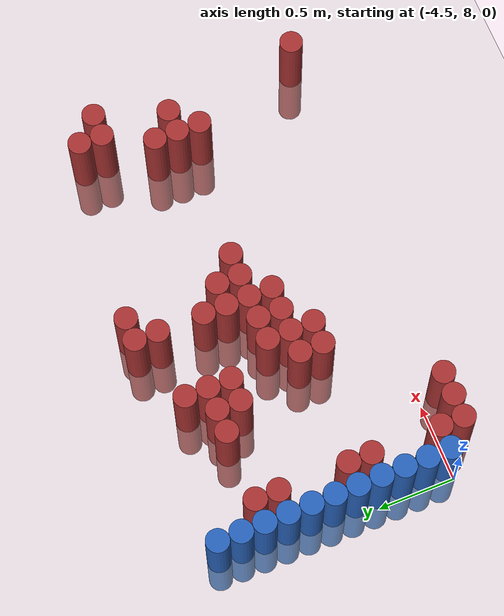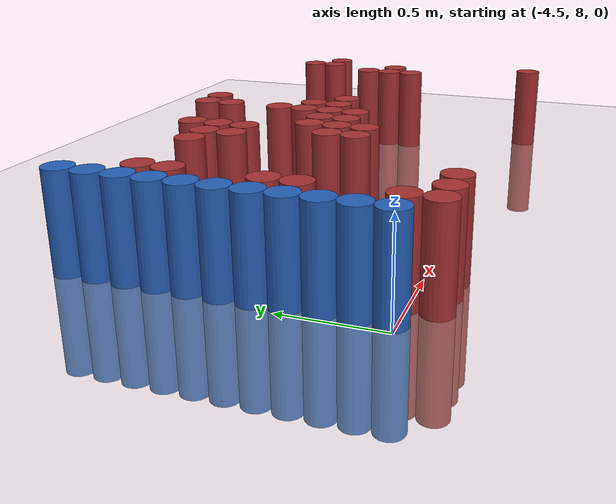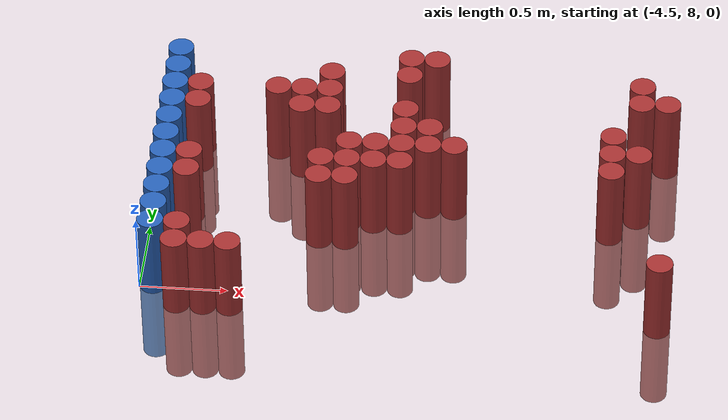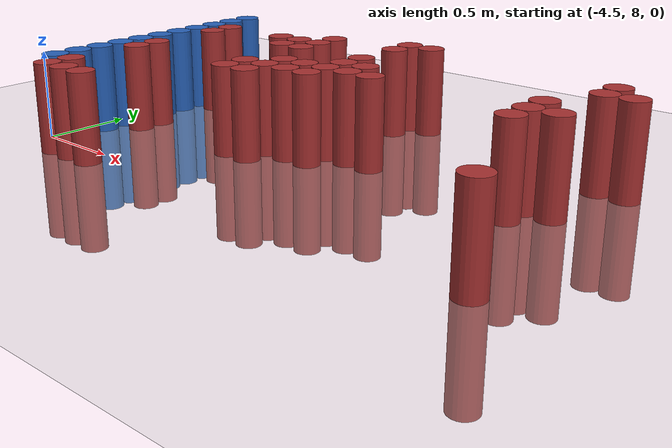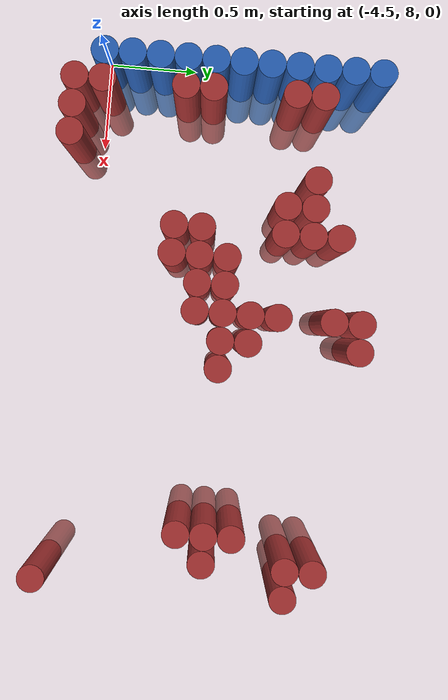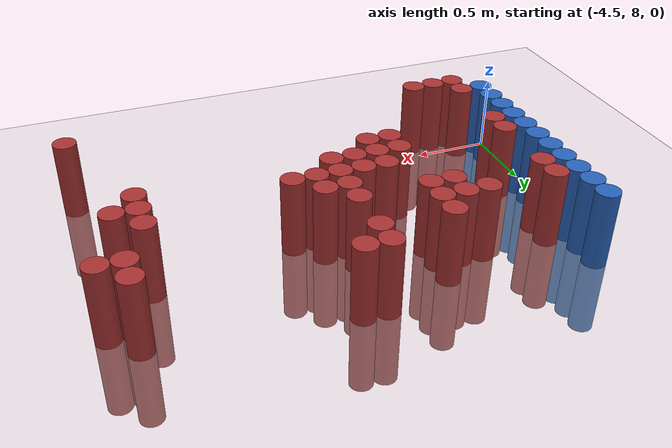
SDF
<sdf version="1.6">
 <world name="default">
  <model name="ground_plane">
   <static>1</static>
   <link name="link">
    <collision name="collision">
     <geometry><plane><normal>0 0 1</normal><size>100 100</size></plane></geometry>
     <surface><friction><ode><mu>100</mu><mu2>50</mu2></ode></friction></surface>
    </collision>
    <visual name="visual">
     <cast_shadows>0</cast_shadows>
     <geometry><plane><normal>0 0 1</normal><size>100 100</size></plane></geometry>
     <material>
      <script><uri>file://media/materials/scripts/gazebo.material</uri><name>Gazebo/Grey</name></script>
     </material>
    </visual>
   </link>
  </model>
  <model name="unit_cylinder_115">
   <static>1</static>
   <pose>-4.425000 8.025000 0.000000 0.000000 0.000000 0.000000</pose>
   <link name="link">
    <inertial>
     <mass>1</mass>
     <inertia><ixx>0.145833</ixx><ixy>0</ixy><ixz>0</ixz><iyy>0.145833</iyy><iyz>0</iyz><izz>0.125</izz></inertia>
    </inertial>
    <collision name="collision">
     <geometry><cylinder><radius>0.075000</radius><length>1</length></cylinder></geometry>
    </collision>
    <visual name="visual">
     <geometry><cylinder><radius>0.075000</radius><length>1</length></cylinder></geometry>
     <material>
      <ambient>0.152000 0.379000 0.720000 1</ambient>
      <diffuse>0.152000 0.379000 0.720000 1</diffuse>
     </material>
     <material>
      <script><name>Gazebo/Grey</name><uri>file://media/materials/scripts/gazebo.material</uri></script>
     </material>
    </visual>
   </link>
  </model>
  <model name="unit_cylinder_116">
   <static>1</static>
   <pose>-4.425000 8.175000 0.000000 0.000000 0.000000 0.000000</pose>
   <link name="link">
    <inertial>
     <mass>1</mass>
     <inertia><ixx>0.145833</ixx><ixy>0</ixy><ixz>0</ixz><iyy>0.145833</iyy><iyz>0</iyz><izz>0.125</izz></inertia>
    </inertial>
    <collision name="collision">
     <geometry><cylinder><radius>0.075000</radius><length>1</length></cylinder></geometry>
    </collision>
    <visual name="visual">
     <geometry><cylinder><radius>0.075000</radius><length>1</length></cylinder></geometry>
     <material>
      <ambient>0.152000 0.379000 0.720000 1</ambient>
      <diffuse>0.152000 0.379000 0.720000 1</diffuse>
     </material>
     <material>
      <script><name>Gazebo/Grey</name><uri>file://media/materials/scripts/gazebo.material</uri></script>
     </material>
    </visual>
   </link>
  </model>
  <model name="unit_cylinder_117">
   <static>1</static>
   <pose>-4.425000 8.325000 0.000000 0.000000 0.000000 0.000000</pose>
   <link name="link">
    <inertial>
     <mass>1</mass>
     <inertia><ixx>0.145833</ixx><ixy>0</ixy><ixz>0</ixz><iyy>0.145833</iyy><iyz>0</iyz><izz>0.125</izz></inertia>
    </inertial>
    <collision name="collision">
     <geometry><cylinder><radius>0.075000</radius><length>1</length></cylinder></geometry>
    </collision>
    <visual name="visual">
     <geometry><cylinder><radius>0.075000</radius><length>1</length></cylinder></geometry>
     <material>
      <ambient>0.152000 0.379000 0.720000 1</ambient>
      <diffuse>0.152000 0.379000 0.720000 1</diffuse>
     </material>
     <material>
      <script><name>Gazebo/Grey</name><uri>file://media/materials/scripts/gazebo.material</uri></script>
     </material>
    </visual>
   </link>
  </model>
  <model name="unit_cylinder_118">
   <static>1</static>
   <pose>-4.425000 8.475000 0.000000 0.000000 0.000000 0.000000</pose>
   <link name="link">
    <inertial>
     <mass>1</mass>
     <inertia><ixx>0.145833</ixx><ixy>0</ixy><ixz>0</ixz><iyy>0.145833</iyy><iyz>0</iyz><izz>0.125</izz></inertia>
    </inertial>
    <collision name="collision">
     <geometry><cylinder><radius>0.075000</radius><length>1</length></cylinder></geometry>
    </collision>
    <visual name="visual">
     <geometry><cylinder><radius>0.075000</radius><length>1</length></cylinder></geometry>
     <material>
      <ambient>0.152000 0.379000 0.720000 1</ambient>
      <diffuse>0.152000 0.379000 0.720000 1</diffuse>
     </material>
     <material>
      <script><name>Gazebo/Grey</name><uri>file://media/materials/scripts/gazebo.material</uri></script>
     </material>
    </visual>
   </link>
  </model>
  <model name="unit_cylinder_119">
   <static>1</static>
   <pose>-4.425000 8.625000 0.000000 0.000000 0.000000 0.000000</pose>
   <link name="link">
    <inertial>
     <mass>1</mass>
     <inertia><ixx>0.145833</ixx><ixy>0</ixy><ixz>0</ixz><iyy>0.145833</iyy><iyz>0</iyz><izz>0.125</izz></inertia>
    </inertial>
    <collision name="collision">
     <geometry><cylinder><radius>0.075000</radius><length>1</length></cylinder></geometry>
    </collision>
    <visual name="visual">
     <geometry><cylinder><radius>0.075000</radius><length>1</length></cylinder></geometry>
     <material>
      <ambient>0.152000 0.379000 0.720000 1</ambient>
      <diffuse>0.152000 0.379000 0.720000 1</diffuse>
     </material>
     <material>
      <script><name>Gazebo/Grey</name><uri>file://media/materials/scripts/gazebo.material</uri></script>
     </material>
    </visual>
   </link>
  </model>
  <model name="unit_cylinder_120">
   <static>1</static>
   <pose>-4.425000 8.775000 0.000000 0.000000 0.000000 0.000000</pose>
   <link name="link">
    <inertial>
     <mass>1</mass>
     <inertia><ixx>0.145833</ixx><ixy>0</ixy><ixz>0</ixz><iyy>0.145833</iyy><iyz>0</iyz><izz>0.125</izz></inertia>
    </inertial>
    <collision name="collision">
     <geometry><cylinder><radius>0.075000</radius><length>1</length></cylinder></geometry>
    </collision>
    <visual name="visual">
     <geometry><cylinder><radius>0.075000</radius><length>1</length></cylinder></geometry>
     <material>
      <ambient>0.152000 0.379000 0.720000 1</ambient>
      <diffuse>0.152000 0.379000 0.720000 1</diffuse>
     </material>
     <material>
      <script><name>Gazebo/Grey</name><uri>file://media/materials/scripts/gazebo.material</uri></script>
     </material>
    </visual>
   </link>
  </model>
  <model name="unit_cylinder_121">
   <static>1</static>
   <pose>-4.425000 8.925000 0.000000 0.000000 0.000000 0.000000</pose>
   <link name="link">
    <inertial>
     <mass>1</mass>
     <inertia><ixx>0.145833</ixx><ixy>0</ixy><ixz>0</ixz><iyy>0.145833</iyy><iyz>0</iyz><izz>0.125</izz></inertia>
    </inertial>
    <collision name="collision">
     <geometry><cylinder><radius>0.075000</radius><length>1</length></cylinder></geometry>
    </collision>
    <visual name="visual">
     <geometry><cylinder><radius>0.075000</radius><length>1</length></cylinder></geometry>
     <material>
      <ambient>0.152000 0.379000 0.720000 1</ambient>
      <diffuse>0.152000 0.379000 0.720000 1</diffuse>
     </material>
     <material>
      <script><name>Gazebo/Grey</name><uri>file://media/materials/scripts/gazebo.material</uri></script>
     </material>
    </visual>
   </link>
  </model>
  <model name="unit_cylinder_122">
   <static>1</static>
   <pose>-4.425000 9.075000 0.000000 0.000000 0.000000 0.000000</pose>
   <link name="link">
    <inertial>
     <mass>1</mass>
     <inertia><ixx>0.145833</ixx><ixy>0</ixy><ixz>0</ixz><iyy>0.145833</iyy><iyz>0</iyz><izz>0.125</izz></inertia>
    </inertial>
    <collision name="collision">
     <geometry><cylinder><radius>0.075000</radius><length>1</length></cylinder></geometry>
    </collision>
    <visual name="visual">
     <geometry><cylinder><radius>0.075000</radius><length>1</length></cylinder></geometry>
     <material>
      <ambient>0.152000 0.379000 0.720000 1</ambient>
      <diffuse>0.152000 0.379000 0.720000 1</diffuse>
     </material>
     <material>
      <script><name>Gazebo/Grey</name><uri>file://media/materials/scripts/gazebo.material</uri></script>
     </material>
    </visual>
   </link>
  </model>
  <model name="unit_cylinder_123">
   <static>1</static>
   <pose>-4.425000 9.225000 0.000000 0.000000 0.000000 0.000000</pose>
   <link name="link">
    <inertial>
     <mass>1</mass>
     <inertia><ixx>0.145833</ixx><ixy>0</ixy><ixz>0</ixz><iyy>0.145833</iyy><iyz>0</iyz><izz>0.125</izz></inertia>
    </inertial>
    <collision name="collision">
     <geometry><cylinder><radius>0.075000</radius><length>1</length></cylinder></geometry>
    </collision>
    <visual name="visual">
     <geometry><cylinder><radius>0.075000</radius><length>1</length></cylinder></geometry>
     <material>
      <ambient>0.152000 0.379000 0.720000 1</ambient>
      <diffuse>0.152000 0.379000 0.720000 1</diffuse>
     </material>
     <material>
      <script><name>Gazebo/Grey</name><uri>file://media/materials/scripts/gazebo.material</uri></script>
     </material>
    </visual>
   </link>
  </model>
  <model name="unit_cylinder_124">
   <static>1</static>
   <pose>-4.425000 9.375000 0.000000 0.000000 0.000000 0.000000</pose>
   <link name="link">
    <inertial>
     <mass>1</mass>
     <inertia><ixx>0.145833</ixx><ixy>0</ixy><ixz>0</ixz><iyy>0.145833</iyy><iyz>0</iyz><izz>0.125</izz></inertia>
    </inertial>
    <collision name="collision">
     <geometry><cylinder><radius>0.075000</radius><length>1</length></cylinder></geometry>
    </collision>
    <visual name="visual">
     <geometry><cylinder><radius>0.075000</radius><length>1</length></cylinder></geometry>
     <material>
      <ambient>0.152000 0.379000 0.720000 1</ambient>
      <diffuse>0.152000 0.379000 0.720000 1</diffuse>
     </material>
     <material>
      <script><name>Gazebo/Grey</name><uri>file://media/materials/scripts/gazebo.material</uri></script>
     </material>
    </visual>
   </link>
  </model>
  <model name="unit_cylinder_125">
   <static>1</static>
   <pose>-4.425000 9.525000 0.000000 0.000000 0.000000 0.000000</pose>
   <link name="link">
    <inertial>
     <mass>1</mass>
     <inertia><ixx>0.145833</ixx><ixy>0</ixy><ixz>0</ixz><iyy>0.145833</iyy><iyz>0</iyz><izz>0.125</izz></inertia>
    </inertial>
    <collision name="collision">
     <geometry><cylinder><radius>0.075000</radius><length>1</length></cylinder></geometry>
    </collision>
    <visual name="visual">
     <geometry><cylinder><radius>0.075000</radius><length>1</length></cylinder></geometry>
     <material>
      <ambient>0.152000 0.379000 0.720000 1</ambient>
      <diffuse>0.152000 0.379000 0.720000 1</diffuse>
     </material>
     <material>
      <script><name>Gazebo/Grey</name><uri>file://media/materials/scripts/gazebo.material</uri></script>
     </material>
    </visual>
   </link>
  </model>
  <model name="unit_cylinder_130">
   <static>1</static>
   <pose>-4.275000 7.875000 0.000000 0.000000 0.000000 0.000000</pose>
   <link name="link">
    <inertial>
     <mass>1</mass>
     <inertia><ixx>0.145833</ixx><ixy>0</ixy><ixz>0</ixz><iyy>0.145833</iyy><iyz>0</iyz><izz>0.125</izz></inertia>
    </inertial>
    <collision name="collision">
     <geometry><cylinder><radius>0.075000</radius><length>1</length></cylinder></geometry>
    </collision>
    <visual name="visual">
     <geometry><cylinder><radius>0.075000</radius><length>1</length></cylinder></geometry>
     <material>
      <ambient>0.648000 0.192000 0.192000 1</ambient>
      <diffuse>0.648000 0.192000 0.192000 1</diffuse>
     </material>
     <material>
      <script><name>Gazebo/Grey</name><uri>file://media/materials/scripts/gazebo.material</uri></script>
     </material>
    </visual>
   </link>
  </model>
  <model name="unit_cylinder_131">
   <static>1</static>
   <pose>-4.275000 8.025000 0.000000 0.000000 0.000000 0.000000</pose>
   <link name="link">
    <inertial>
     <mass>1</mass>
     <inertia><ixx>0.145833</ixx><ixy>0</ixy><ixz>0</ixz><iyy>0.145833</iyy><iyz>0</iyz><izz>0.125</izz></inertia>
    </inertial>
    <collision name="collision">
     <geometry><cylinder><radius>0.075000</radius><length>1</length></cylinder></geometry>
    </collision>
    <visual name="visual">
     <geometry><cylinder><radius>0.075000</radius><length>1</length></cylinder></geometry>
     <material>
      <ambient>0.648000 0.192000 0.192000 1</ambient>
      <diffuse>0.648000 0.192000 0.192000 1</diffuse>
     </material>
     <material>
      <script><name>Gazebo/Grey</name><uri>file://media/materials/scripts/gazebo.material</uri></script>
     </material>
    </visual>
   </link>
  </model>
  <model name="unit_cylinder_132">
   <static>1</static>
   <pose>-4.275000 8.475000 0.000000 0.000000 0.000000 0.000000</pose>
   <link name="link">
    <inertial>
     <mass>1</mass>
     <inertia><ixx>0.145833</ixx><ixy>0</ixy><ixz>0</ixz><iyy>0.145833</iyy><iyz>0</iyz><izz>0.125</izz></inertia>
    </inertial>
    <collision name="collision">
     <geometry><cylinder><radius>0.075000</radius><length>1</length></cylinder></geometry>
    </collision>
    <visual name="visual">
     <geometry><cylinder><radius>0.075000</radius><length>1</length></cylinder></geometry>
     <material>
      <ambient>0.648000 0.192000 0.192000 1</ambient>
      <diffuse>0.648000 0.192000 0.192000 1</diffuse>
     </material>
     <material>
      <script><name>Gazebo/Grey</name><uri>file://media/materials/scripts/gazebo.material</uri></script>
     </material>
    </visual>
   </link>
  </model>
  <model name="unit_cylinder_133">
   <static>1</static>
   <pose>-4.275000 8.625000 0.000000 0.000000 0.000000 0.000000</pose>
   <link name="link">
    <inertial>
     <mass>1</mass>
     <inertia><ixx>0.145833</ixx><ixy>0</ixy><ixz>0</ixz><iyy>0.145833</iyy><iyz>0</iyz><izz>0.125</izz></inertia>
    </inertial>
    <collision name="collision">
     <geometry><cylinder><radius>0.075000</radius><length>1</length></cylinder></geometry>
    </collision>
    <visual name="visual">
     <geometry><cylinder><radius>0.075000</radius><length>1</length></cylinder></geometry>
     <material>
      <ambient>0.648000 0.192000 0.192000 1</ambient>
      <diffuse>0.648000 0.192000 0.192000 1</diffuse>
     </material>
     <material>
      <script><name>Gazebo/Grey</name><uri>file://media/materials/scripts/gazebo.material</uri></script>
     </material>
    </visual>
   </link>
  </model>
  <model name="unit_cylinder_134">
   <static>1</static>
   <pose>-4.275000 9.075000 0.000000 0.000000 0.000000 0.000000</pose>
   <link name="link">
    <inertial>
     <mass>1</mass>
     <inertia><ixx>0.145833</ixx><ixy>0</ixy><ixz>0</ixz><iyy>0.145833</iyy><iyz>0</iyz><izz>0.125</izz></inertia>
    </inertial>
    <collision name="collision">
     <geometry><cylinder><radius>0.075000</radius><length>1</length></cylinder></geometry>
    </collision>
    <visual name="visual">
     <geometry><cylinder><radius>0.075000</radius><length>1</length></cylinder></geometry>
     <material>
      <ambient>0.648000 0.192000 0.192000 1</ambient>
      <diffuse>0.648000 0.192000 0.192000 1</diffuse>
     </material>
     <material>
      <script><name>Gazebo/Grey</name><uri>file://media/materials/scripts/gazebo.material</uri></script>
     </material>
    </visual>
   </link>
  </model>
  <model name="unit_cylinder_135">
   <static>1</static>
   <pose>-4.275000 9.225000 0.000000 0.000000 0.000000 0.000000</pose>
   <link name="link">
    <inertial>
     <mass>1</mass>
     <inertia><ixx>0.145833</ixx><ixy>0</ixy><ixz>0</ixz><iyy>0.145833</iyy><iyz>0</iyz><izz>0.125</izz></inertia>
    </inertial>
    <collision name="collision">
     <geometry><cylinder><radius>0.075000</radius><length>1</length></cylinder></geometry>
    </collision>
    <visual name="visual">
     <geometry><cylinder><radius>0.075000</radius><length>1</length></cylinder></geometry>
     <material>
      <ambient>0.648000 0.192000 0.192000 1</ambient>
      <diffuse>0.648000 0.192000 0.192000 1</diffuse>
     </material>
     <material>
      <script><name>Gazebo/Grey</name><uri>file://media/materials/scripts/gazebo.material</uri></script>
     </material>
    </visual>
   </link>
  </model>
  <model name="unit_cylinder_139">
   <static>1</static>
   <pose>-4.125000 7.875000 0.000000 0.000000 0.000000 0.000000</pose>
   <link name="link">
    <inertial>
     <mass>1</mass>
     <inertia><ixx>0.145833</ixx><ixy>0</ixy><ixz>0</ixz><iyy>0.145833</iyy><iyz>0</iyz><izz>0.125</izz></inertia>
    </inertial>
    <collision name="collision">
     <geometry><cylinder><radius>0.075000</radius><length>1</length></cylinder></geometry>
    </collision>
    <visual name="visual">
     <geometry><cylinder><radius>0.075000</radius><length>1</length></cylinder></geometry>
     <material>
      <ambient>0.648000 0.192000 0.192000 1</ambient>
      <diffuse>0.648000 0.192000 0.192000 1</diffuse>
     </material>
     <material>
      <script><name>Gazebo/Grey</name><uri>file://media/materials/scripts/gazebo.material</uri></script>
     </material>
    </visual>
   </link>
  </model>
  <model name="unit_cylinder_144">
   <static>1</static>
   <pose>-3.975000 7.875000 0.000000 0.000000 0.000000 0.000000</pose>
   <link name="link">
    <inertial>
     <mass>1</mass>
     <inertia><ixx>0.145833</ixx><ixy>0</ixy><ixz>0</ixz><iyy>0.145833</iyy><iyz>0</iyz><izz>0.125</izz></inertia>
    </inertial>
    <collision name="collision">
     <geometry><cylinder><radius>0.075000</radius><length>1</length></cylinder></geometry>
    </collision>
    <visual name="visual">
     <geometry><cylinder><radius>0.075000</radius><length>1</length></cylinder></geometry>
     <material>
      <ambient>0.648000 0.192000 0.192000 1</ambient>
      <diffuse>0.648000 0.192000 0.192000 1</diffuse>
     </material>
     <material>
      <script><name>Gazebo/Grey</name><uri>file://media/materials/scripts/gazebo.material</uri></script>
     </material>
    </visual>
   </link>
  </model>
  <model name="unit_cylinder_147">
   <static>1</static>
   <pose>-3.825000 9.225000 0.000000 0.000000 0.000000 0.000000</pose>
   <link name="link">
    <inertial>
     <mass>1</mass>
     <inertia><ixx>0.145833</ixx><ixy>0</ixy><ixz>0</ixz><iyy>0.145833</iyy><iyz>0</iyz><izz>0.125</izz></inertia>
    </inertial>
    <collision name="collision">
     <geometry><cylinder><radius>0.075000</radius><length>1</length></cylinder></geometry>
    </collision>
    <visual name="visual">
     <geometry><cylinder><radius>0.075000</radius><length>1</length></cylinder></geometry>
     <material>
      <ambient>0.648000 0.192000 0.192000 1</ambient>
      <diffuse>0.648000 0.192000 0.192000 1</diffuse>
     </material>
     <material>
      <script><name>Gazebo/Grey</name><uri>file://media/materials/scripts/gazebo.material</uri></script>
     </material>
    </visual>
   </link>
  </model>
  <model name="unit_cylinder_149">
   <static>1</static>
   <pose>-3.675000 9.075000 0.000000 0.000000 0.000000 0.000000</pose>
   <link name="link">
    <inertial>
     <mass>1</mass>
     <inertia><ixx>0.145833</ixx><ixy>0</ixy><ixz>0</ixz><iyy>0.145833</iyy><iyz>0</iyz><izz>0.125</izz></inertia>
    </inertial>
    <collision name="collision">
     <geometry><cylinder><radius>0.075000</radius><length>1</length></cylinder></geometry>
    </collision>
    <visual name="visual">
     <geometry><cylinder><radius>0.075000</radius><length>1</length></cylinder></geometry>
     <material>
      <ambient>0.648000 0.192000 0.192000 1</ambient>
      <diffuse>0.648000 0.192000 0.192000 1</diffuse>
     </material>
     <material>
      <script><name>Gazebo/Grey</name><uri>file://media/materials/scripts/gazebo.material</uri></script>
     </material>
    </visual>
   </link>
  </model>
  <model name="unit_cylinder_150">
   <static>1</static>
   <pose>-3.675000 9.225000 0.000000 0.000000 0.000000 0.000000</pose>
   <link name="link">
    <inertial>
     <mass>1</mass>
     <inertia><ixx>0.145833</ixx><ixy>0</ixy><ixz>0</ixz><iyy>0.145833</iyy><iyz>0</iyz><izz>0.125</izz></inertia>
    </inertial>
    <collision name="collision">
     <geometry><cylinder><radius>0.075000</radius><length>1</length></cylinder></geometry>
    </collision>
    <visual name="visual">
     <geometry><cylinder><radius>0.075000</radius><length>1</length></cylinder></geometry>
     <material>
      <ambient>0.648000 0.192000 0.192000 1</ambient>
      <diffuse>0.648000 0.192000 0.192000 1</diffuse>
     </material>
     <material>
      <script><name>Gazebo/Grey</name><uri>file://media/materials/scripts/gazebo.material</uri></script>
     </material>
    </visual>
   </link>
  </model>
  <model name="unit_cylinder_151">
   <static>1</static>
   <pose>-3.525000 8.475000 0.000000 0.000000 0.000000 0.000000</pose>
   <link name="link">
    <inertial>
     <mass>1</mass>
     <inertia><ixx>0.145833</ixx><ixy>0</ixy><ixz>0</ixz><iyy>0.145833</iyy><iyz>0</iyz><izz>0.125</izz></inertia>
    </inertial>
    <collision name="collision">
     <geometry><cylinder><radius>0.075000</radius><length>1</length></cylinder></geometry>
    </collision>
    <visual name="visual">
     <geometry><cylinder><radius>0.075000</radius><length>1</length></cylinder></geometry>
     <material>
      <ambient>0.648000 0.192000 0.192000 1</ambient>
      <diffuse>0.648000 0.192000 0.192000 1</diffuse>
     </material>
     <material>
      <script><name>Gazebo/Grey</name><uri>file://media/materials/scripts/gazebo.material</uri></script>
     </material>
    </visual>
   </link>
  </model>
  <model name="unit_cylinder_152">
   <static>1</static>
   <pose>-3.525000 8.625000 0.000000 0.000000 0.000000 0.000000</pose>
   <link name="link">
    <inertial>
     <mass>1</mass>
     <inertia><ixx>0.145833</ixx><ixy>0</ixy><ixz>0</ixz><iyy>0.145833</iyy><iyz>0</iyz><izz>0.125</izz></inertia>
    </inertial>
    <collision name="collision">
     <geometry><cylinder><radius>0.075000</radius><length>1</length></cylinder></geometry>
    </collision>
    <visual name="visual">
     <geometry><cylinder><radius>0.075000</radius><length>1</length></cylinder></geometry>
     <material>
      <ambient>0.648000 0.192000 0.192000 1</ambient>
      <diffuse>0.648000 0.192000 0.192000 1</diffuse>
     </material>
     <material>
      <script><name>Gazebo/Grey</name><uri>file://media/materials/scripts/gazebo.material</uri></script>
     </material>
    </visual>
   </link>
  </model>
  <model name="unit_cylinder_153">
   <static>1</static>
   <pose>-3.525000 9.075000 0.000000 0.000000 0.000000 0.000000</pose>
   <link name="link">
    <inertial>
     <mass>1</mass>
     <inertia><ixx>0.145833</ixx><ixy>0</ixy><ixz>0</ixz><iyy>0.145833</iyy><iyz>0</iyz><izz>0.125</izz></inertia>
    </inertial>
    <collision name="collision">
     <geometry><cylinder><radius>0.075000</radius><length>1</length></cylinder></geometry>
    </collision>
    <visual name="visual">
     <geometry><cylinder><radius>0.075000</radius><length>1</length></cylinder></geometry>
     <material>
      <ambient>0.648000 0.192000 0.192000 1</ambient>
      <diffuse>0.648000 0.192000 0.192000 1</diffuse>
     </material>
     <material>
      <script><name>Gazebo/Grey</name><uri>file://media/materials/scripts/gazebo.material</uri></script>
     </material>
    </visual>
   </link>
  </model>
  <model name="unit_cylinder_154">
   <static>1</static>
   <pose>-3.525000 9.225000 0.000000 0.000000 0.000000 0.000000</pose>
   <link name="link">
    <inertial>
     <mass>1</mass>
     <inertia><ixx>0.145833</ixx><ixy>0</ixy><ixz>0</ixz><iyy>0.145833</iyy><iyz>0</iyz><izz>0.125</izz></inertia>
    </inertial>
    <collision name="collision">
     <geometry><cylinder><radius>0.075000</radius><length>1</length></cylinder></geometry>
    </collision>
    <visual name="visual">
     <geometry><cylinder><radius>0.075000</radius><length>1</length></cylinder></geometry>
     <material>
      <ambient>0.648000 0.192000 0.192000 1</ambient>
      <diffuse>0.648000 0.192000 0.192000 1</diffuse>
     </material>
     <material>
      <script><name>Gazebo/Grey</name><uri>file://media/materials/scripts/gazebo.material</uri></script>
     </material>
    </visual>
   </link>
  </model>
  <model name="unit_cylinder_155">
   <static>1</static>
   <pose>-3.525000 9.375000 0.000000 0.000000 0.000000 0.000000</pose>
   <link name="link">
    <inertial>
     <mass>1</mass>
     <inertia><ixx>0.145833</ixx><ixy>0</ixy><ixz>0</ixz><iyy>0.145833</iyy><iyz>0</iyz><izz>0.125</izz></inertia>
    </inertial>
    <collision name="collision">
     <geometry><cylinder><radius>0.075000</radius><length>1</length></cylinder></geometry>
    </collision>
    <visual name="visual">
     <geometry><cylinder><radius>0.075000</radius><length>1</length></cylinder></geometry>
     <material>
      <ambient>0.648000 0.192000 0.192000 1</ambient>
      <diffuse>0.648000 0.192000 0.192000 1</diffuse>
     </material>
     <material>
      <script><name>Gazebo/Grey</name><uri>file://media/materials/scripts/gazebo.material</uri></script>
     </material>
    </visual>
   </link>
  </model>
  <model name="unit_cylinder_156">
   <static>1</static>
   <pose>-3.375000 8.475000 0.000000 0.000000 0.000000 0.000000</pose>
   <link name="link">
    <inertial>
     <mass>1</mass>
     <inertia><ixx>0.145833</ixx><ixy>0</ixy><ixz>0</ixz><iyy>0.145833</iyy><iyz>0</iyz><izz>0.125</izz></inertia>
    </inertial>
    <collision name="collision">
     <geometry><cylinder><radius>0.075000</radius><length>1</length></cylinder></geometry>
    </collision>
    <visual name="visual">
     <geometry><cylinder><radius>0.075000</radius><length>1</length></cylinder></geometry>
     <material>
      <ambient>0.648000 0.192000 0.192000 1</ambient>
      <diffuse>0.648000 0.192000 0.192000 1</diffuse>
     </material>
     <material>
      <script><name>Gazebo/Grey</name><uri>file://media/materials/scripts/gazebo.material</uri></script>
     </material>
    </visual>
   </link>
  </model>
  <model name="unit_cylinder_157">
   <static>1</static>
   <pose>-3.375000 8.625000 0.000000 0.000000 0.000000 0.000000</pose>
   <link name="link">
    <inertial>
     <mass>1</mass>
     <inertia><ixx>0.145833</ixx><ixy>0</ixy><ixz>0</ixz><iyy>0.145833</iyy><iyz>0</iyz><izz>0.125</izz></inertia>
    </inertial>
    <collision name="collision">
     <geometry><cylinder><radius>0.075000</radius><length>1</length></cylinder></geometry>
    </collision>
    <visual name="visual">
     <geometry><cylinder><radius>0.075000</radius><length>1</length></cylinder></geometry>
     <material>
      <ambient>0.648000 0.192000 0.192000 1</ambient>
      <diffuse>0.648000 0.192000 0.192000 1</diffuse>
     </material>
     <material>
      <script><name>Gazebo/Grey</name><uri>file://media/materials/scripts/gazebo.material</uri></script>
     </material>
    </visual>
   </link>
  </model>
  <model name="unit_cylinder_158">
   <static>1</static>
   <pose>-3.375000 8.775000 0.000000 0.000000 0.000000 0.000000</pose>
   <link name="link">
    <inertial>
     <mass>1</mass>
     <inertia><ixx>0.145833</ixx><ixy>0</ixy><ixz>0</ixz><iyy>0.145833</iyy><iyz>0</iyz><izz>0.125</izz></inertia>
    </inertial>
    <collision name="collision">
     <geometry><cylinder><radius>0.075000</radius><length>1</length></cylinder></geometry>
    </collision>
    <visual name="visual">
     <geometry><cylinder><radius>0.075000</radius><length>1</length></cylinder></geometry>
     <material>
      <ambient>0.648000 0.192000 0.192000 1</ambient>
      <diffuse>0.648000 0.192000 0.192000 1</diffuse>
     </material>
     <material>
      <script><name>Gazebo/Grey</name><uri>file://media/materials/scripts/gazebo.material</uri></script>
     </material>
    </visual>
   </link>
  </model>
  <model name="unit_cylinder_159">
   <static>1</static>
   <pose>-3.225000 8.625000 0.000000 0.000000 0.000000 0.000000</pose>
   <link name="link">
    <inertial>
     <mass>1</mass>
     <inertia><ixx>0.145833</ixx><ixy>0</ixy><ixz>0</ixz><iyy>0.145833</iyy><iyz>0</iyz><izz>0.125</izz></inertia>
    </inertial>
    <collision name="collision">
     <geometry><cylinder><radius>0.075000</radius><length>1</length></cylinder></geometry>
    </collision>
    <visual name="visual">
     <geometry><cylinder><radius>0.075000</radius><length>1</length></cylinder></geometry>
     <material>
      <ambient>0.648000 0.192000 0.192000 1</ambient>
      <diffuse>0.648000 0.192000 0.192000 1</diffuse>
     </material>
     <material>
      <script><name>Gazebo/Grey</name><uri>file://media/materials/scripts/gazebo.material</uri></script>
     </material>
    </visual>
   </link>
  </model>
  <model name="unit_cylinder_160">
   <static>1</static>
   <pose>-3.225000 8.775000 0.000000 0.000000 0.000000 0.000000</pose>
   <link name="link">
    <inertial>
     <mass>1</mass>
     <inertia><ixx>0.145833</ixx><ixy>0</ixy><ixz>0</ixz><iyy>0.145833</iyy><iyz>0</iyz><izz>0.125</izz></inertia>
    </inertial>
    <collision name="collision">
     <geometry><cylinder><radius>0.075000</radius><length>1</length></cylinder></geometry>
    </collision>
    <visual name="visual">
     <geometry><cylinder><radius>0.075000</radius><length>1</length></cylinder></geometry>
     <material>
      <ambient>0.648000 0.192000 0.192000 1</ambient>
      <diffuse>0.648000 0.192000 0.192000 1</diffuse>
     </material>
     <material>
      <script><name>Gazebo/Grey</name><uri>file://media/materials/scripts/gazebo.material</uri></script>
     </material>
    </visual>
   </link>
  </model>
  <model name="unit_cylinder_161">
   <static>1</static>
   <pose>-3.075000 8.625000 0.000000 0.000000 0.000000 0.000000</pose>
   <link name="link">
    <inertial>
     <mass>1</mass>
     <inertia><ixx>0.145833</ixx><ixy>0</ixy><ixz>0</ixz><iyy>0.145833</iyy><iyz>0</iyz><izz>0.125</izz></inertia>
    </inertial>
    <collision name="collision">
     <geometry><cylinder><radius>0.075000</radius><length>1</length></cylinder></geometry>
    </collision>
    <visual name="visual">
     <geometry><cylinder><radius>0.075000</radius><length>1</length></cylinder></geometry>
     <material>
      <ambient>0.648000 0.192000 0.192000 1</ambient>
      <diffuse>0.648000 0.192000 0.192000 1</diffuse>
     </material>
     <material>
      <script><name>Gazebo/Grey</name><uri>file://media/materials/scripts/gazebo.material</uri></script>
     </material>
    </visual>
   </link>
  </model>
  <model name="unit_cylinder_162">
   <static>1</static>
   <pose>-3.075000 8.775000 0.000000 0.000000 0.000000 0.000000</pose>
   <link name="link">
    <inertial>
     <mass>1</mass>
     <inertia><ixx>0.145833</ixx><ixy>0</ixy><ixz>0</ixz><iyy>0.145833</iyy><iyz>0</iyz><izz>0.125</izz></inertia>
    </inertial>
    <collision name="collision">
     <geometry><cylinder><radius>0.075000</radius><length>1</length></cylinder></geometry>
    </collision>
    <visual name="visual">
     <geometry><cylinder><radius>0.075000</radius><length>1</length></cylinder></geometry>
     <material>
      <ambient>0.648000 0.192000 0.192000 1</ambient>
      <diffuse>0.648000 0.192000 0.192000 1</diffuse>
     </material>
     <material>
      <script><name>Gazebo/Grey</name><uri>file://media/materials/scripts/gazebo.material</uri></script>
     </material>
    </visual>
   </link>
  </model>
  <model name="unit_cylinder_163">
   <static>1</static>
   <pose>-3.075000 8.925000 0.000000 0.000000 0.000000 0.000000</pose>
   <link name="link">
    <inertial>
     <mass>1</mass>
     <inertia><ixx>0.145833</ixx><ixy>0</ixy><ixz>0</ixz><iyy>0.145833</iyy><iyz>0</iyz><izz>0.125</izz></inertia>
    </inertial>
    <collision name="collision">
     <geometry><cylinder><radius>0.075000</radius><length>1</length></cylinder></geometry>
    </collision>
    <visual name="visual">
     <geometry><cylinder><radius>0.075000</radius><length>1</length></cylinder></geometry>
     <material>
      <ambient>0.648000 0.192000 0.192000 1</ambient>
      <diffuse>0.648000 0.192000 0.192000 1</diffuse>
     </material>
     <material>
      <script><name>Gazebo/Grey</name><uri>file://media/materials/scripts/gazebo.material</uri></script>
     </material>
    </visual>
   </link>
  </model>
  <model name="unit_cylinder_164">
   <static>1</static>
   <pose>-3.075000 9.075000 0.000000 0.000000 0.000000 0.000000</pose>
   <link name="link">
    <inertial>
     <mass>1</mass>
     <inertia><ixx>0.145833</ixx><ixy>0</ixy><ixz>0</ixz><iyy>0.145833</iyy><iyz>0</iyz><izz>0.125</izz></inertia>
    </inertial>
    <collision name="collision">
     <geometry><cylinder><radius>0.075000</radius><length>1</length></cylinder></geometry>
    </collision>
    <visual name="visual">
     <geometry><cylinder><radius>0.075000</radius><length>1</length></cylinder></geometry>
     <material>
      <ambient>0.648000 0.192000 0.192000 1</ambient>
      <diffuse>0.648000 0.192000 0.192000 1</diffuse>
     </material>
     <material>
      <script><name>Gazebo/Grey</name><uri>file://media/materials/scripts/gazebo.material</uri></script>
     </material>
    </visual>
   </link>
  </model>
  <model name="unit_cylinder_165">
   <static>1</static>
   <pose>-3.075000 9.375000 0.000000 0.000000 0.000000 0.000000</pose>
   <link name="link">
    <inertial>
     <mass>1</mass>
     <inertia><ixx>0.145833</ixx><ixy>0</ixy><ixz>0</ixz><iyy>0.145833</iyy><iyz>0</iyz><izz>0.125</izz></inertia>
    </inertial>
    <collision name="collision">
     <geometry><cylinder><radius>0.075000</radius><length>1</length></cylinder></geometry>
    </collision>
    <visual name="visual">
     <geometry><cylinder><radius>0.075000</radius><length>1</length></cylinder></geometry>
     <material>
      <ambient>0.648000 0.192000 0.192000 1</ambient>
      <diffuse>0.648000 0.192000 0.192000 1</diffuse>
     </material>
     <material>
      <script><name>Gazebo/Grey</name><uri>file://media/materials/scripts/gazebo.material</uri></script>
     </material>
    </visual>
   </link>
  </model>
  <model name="unit_cylinder_166">
   <static>1</static>
   <pose>-3.075000 9.525000 0.000000 0.000000 0.000000 0.000000</pose>
   <link name="link">
    <inertial>
     <mass>1</mass>
     <inertia><ixx>0.145833</ixx><ixy>0</ixy><ixz>0</ixz><iyy>0.145833</iyy><iyz>0</iyz><izz>0.125</izz></inertia>
    </inertial>
    <collision name="collision">
     <geometry><cylinder><radius>0.075000</radius><length>1</length></cylinder></geometry>
    </collision>
    <visual name="visual">
     <geometry><cylinder><radius>0.075000</radius><length>1</length></cylinder></geometry>
     <material>
      <ambient>0.648000 0.192000 0.192000 1</ambient>
      <diffuse>0.648000 0.192000 0.192000 1</diffuse>
     </material>
     <material>
      <script><name>Gazebo/Grey</name><uri>file://media/materials/scripts/gazebo.material</uri></script>
     </material>
    </visual>
   </link>
  </model>
  <model name="unit_cylinder_169">
   <static>1</static>
   <pose>-2.925000 8.775000 0.000000 0.000000 0.000000 0.000000</pose>
   <link name="link">
    <inertial>
     <mass>1</mass>
     <inertia><ixx>0.145833</ixx><ixy>0</ixy><ixz>0</ixz><iyy>0.145833</iyy><iyz>0</iyz><izz>0.125</izz></inertia>
    </inertial>
    <collision name="collision">
     <geometry><cylinder><radius>0.075000</radius><length>1</length></cylinder></geometry>
    </collision>
    <visual name="visual">
     <geometry><cylinder><radius>0.075000</radius><length>1</length></cylinder></geometry>
     <material>
      <ambient>0.648000 0.192000 0.192000 1</ambient>
      <diffuse>0.648000 0.192000 0.192000 1</diffuse>
     </material>
     <material>
      <script><name>Gazebo/Grey</name><uri>file://media/materials/scripts/gazebo.material</uri></script>
     </material>
    </visual>
   </link>
  </model>
  <model name="unit_cylinder_170">
   <static>1</static>
   <pose>-2.925000 8.925000 0.000000 0.000000 0.000000 0.000000</pose>
   <link name="link">
    <inertial>
     <mass>1</mass>
     <inertia><ixx>0.145833</ixx><ixy>0</ixy><ixz>0</ixz><iyy>0.145833</iyy><iyz>0</iyz><izz>0.125</izz></inertia>
    </inertial>
    <collision name="collision">
     <geometry><cylinder><radius>0.075000</radius><length>1</length></cylinder></geometry>
    </collision>
    <visual name="visual">
     <geometry><cylinder><radius>0.075000</radius><length>1</length></cylinder></geometry>
     <material>
      <ambient>0.648000 0.192000 0.192000 1</ambient>
      <diffuse>0.648000 0.192000 0.192000 1</diffuse>
     </material>
     <material>
      <script><name>Gazebo/Grey</name><uri>file://media/materials/scripts/gazebo.material</uri></script>
     </material>
    </visual>
   </link>
  </model>
  <model name="unit_cylinder_171">
   <static>1</static>
   <pose>-2.925000 9.525000 0.000000 0.000000 0.000000 0.000000</pose>
   <link name="link">
    <inertial>
     <mass>1</mass>
     <inertia><ixx>0.145833</ixx><ixy>0</ixy><ixz>0</ixz><iyy>0.145833</iyy><iyz>0</iyz><izz>0.125</izz></inertia>
    </inertial>
    <collision name="collision">
     <geometry><cylinder><radius>0.075000</radius><length>1</length></cylinder></geometry>
    </collision>
    <visual name="visual">
     <geometry><cylinder><radius>0.075000</radius><length>1</length></cylinder></geometry>
     <material>
      <ambient>0.648000 0.192000 0.192000 1</ambient>
      <diffuse>0.648000 0.192000 0.192000 1</diffuse>
     </material>
     <material>
      <script><name>Gazebo/Grey</name><uri>file://media/materials/scripts/gazebo.material</uri></script>
     </material>
    </visual>
   </link>
  </model>
  <model name="unit_cylinder_176">
   <static>1</static>
   <pose>-2.775000 8.775000 0.000000 0.000000 0.000000 0.000000</pose>
   <link name="link">
    <inertial>
     <mass>1</mass>
     <inertia><ixx>0.145833</ixx><ixy>0</ixy><ixz>0</ixz><iyy>0.145833</iyy><iyz>0</iyz><izz>0.125</izz></inertia>
    </inertial>
    <collision name="collision">
     <geometry><cylinder><radius>0.075000</radius><length>1</length></cylinder></geometry>
    </collision>
    <visual name="visual">
     <geometry><cylinder><radius>0.075000</radius><length>1</length></cylinder></geometry>
     <material>
      <ambient>0.648000 0.192000 0.192000 1</ambient>
      <diffuse>0.648000 0.192000 0.192000 1</diffuse>
     </material>
     <material>
      <script><name>Gazebo/Grey</name><uri>file://media/materials/scripts/gazebo.material</uri></script>
     </material>
    </visual>
   </link>
  </model>
  <model name="unit_cylinder_200">
   <static>1</static>
   <pose>-1.875000 8.625000 0.000000 0.000000 0.000000 0.000000</pose>
   <link name="link">
    <inertial>
     <mass>1</mass>
     <inertia><ixx>0.145833</ixx><ixy>0</ixy><ixz>0</ixz><iyy>0.145833</iyy><iyz>0</iyz><izz>0.125</izz></inertia>
    </inertial>
    <collision name="collision">
     <geometry><cylinder><radius>0.075000</radius><length>1</length></cylinder></geometry>
    </collision>
    <visual name="visual">
     <geometry><cylinder><radius>0.075000</radius><length>1</length></cylinder></geometry>
     <material>
      <ambient>0.648000 0.192000 0.192000 1</ambient>
      <diffuse>0.648000 0.192000 0.192000 1</diffuse>
     </material>
     <material>
      <script><name>Gazebo/Grey</name><uri>file://media/materials/scripts/gazebo.material</uri></script>
     </material>
    </visual>
   </link>
  </model>
  <model name="unit_cylinder_201">
   <static>1</static>
   <pose>-1.875000 8.775000 0.000000 0.000000 0.000000 0.000000</pose>
   <link name="link">
    <inertial>
     <mass>1</mass>
     <inertia><ixx>0.145833</ixx><ixy>0</ixy><ixz>0</ixz><iyy>0.145833</iyy><iyz>0</iyz><izz>0.125</izz></inertia>
    </inertial>
    <collision name="collision">
     <geometry><cylinder><radius>0.075000</radius><length>1</length></cylinder></geometry>
    </collision>
    <visual name="visual">
     <geometry><cylinder><radius>0.075000</radius><length>1</length></cylinder></geometry>
     <material>
      <ambient>0.648000 0.192000 0.192000 1</ambient>
      <diffuse>0.648000 0.192000 0.192000 1</diffuse>
     </material>
     <material>
      <script><name>Gazebo/Grey</name><uri>file://media/materials/scripts/gazebo.material</uri></script>
     </material>
    </visual>
   </link>
  </model>
  <model name="unit_cylinder_202">
   <static>1</static>
   <pose>-1.875000 8.925000 0.000000 0.000000 0.000000 0.000000</pose>
   <link name="link">
    <inertial>
     <mass>1</mass>
     <inertia><ixx>0.145833</ixx><ixy>0</ixy><ixz>0</ixz><iyy>0.145833</iyy><iyz>0</iyz><izz>0.125</izz></inertia>
    </inertial>
    <collision name="collision">
     <geometry><cylinder><radius>0.075000</radius><length>1</length></cylinder></geometry>
    </collision>
    <visual name="visual">
     <geometry><cylinder><radius>0.075000</radius><length>1</length></cylinder></geometry>
     <material>
      <ambient>0.648000 0.192000 0.192000 1</ambient>
      <diffuse>0.648000 0.192000 0.192000 1</diffuse>
     </material>
     <material>
      <script><name>Gazebo/Grey</name><uri>file://media/materials/scripts/gazebo.material</uri></script>
     </material>
    </visual>
   </link>
  </model>
  <model name="unit_cylinder_206">
   <static>1</static>
   <pose>-1.725000 8.775000 0.000000 0.000000 0.000000 0.000000</pose>
   <link name="link">
    <inertial>
     <mass>1</mass>
     <inertia><ixx>0.145833</ixx><ixy>0</ixy><ixz>0</ixz><iyy>0.145833</iyy><iyz>0</iyz><izz>0.125</izz></inertia>
    </inertial>
    <collision name="collision">
     <geometry><cylinder><radius>0.075000</radius><length>1</length></cylinder></geometry>
    </collision>
    <visual name="visual">
     <geometry><cylinder><radius>0.075000</radius><length>1</length></cylinder></geometry>
     <material>
      <ambient>0.648000 0.192000 0.192000 1</ambient>
      <diffuse>0.648000 0.192000 0.192000 1</diffuse>
     </material>
     <material>
      <script><name>Gazebo/Grey</name><uri>file://media/materials/scripts/gazebo.material</uri></script>
     </material>
    </visual>
   </link>
  </model>
  <model name="unit_cylinder_207">
   <static>1</static>
   <pose>-1.725000 9.225000 0.000000 0.000000 0.000000 0.000000</pose>
   <link name="link">
    <inertial>
     <mass>1</mass>
     <inertia><ixx>0.145833</ixx><ixy>0</ixy><ixz>0</ixz><iyy>0.145833</iyy><iyz>0</iyz><izz>0.125</izz></inertia>
    </inertial>
    <collision name="collision">
     <geometry><cylinder><radius>0.075000</radius><length>1</length></cylinder></geometry>
    </collision>
    <visual name="visual">
     <geometry><cylinder><radius>0.075000</radius><length>1</length></cylinder></geometry>
     <material>
      <ambient>0.648000 0.192000 0.192000 1</ambient>
      <diffuse>0.648000 0.192000 0.192000 1</diffuse>
     </material>
     <material>
      <script><name>Gazebo/Grey</name><uri>file://media/materials/scripts/gazebo.material</uri></script>
     </material>
    </visual>
   </link>
  </model>
  <model name="unit_cylinder_208">
   <static>1</static>
   <pose>-1.725000 9.375000 0.000000 0.000000 0.000000 0.000000</pose>
   <link name="link">
    <inertial>
     <mass>1</mass>
     <inertia><ixx>0.145833</ixx><ixy>0</ixy><ixz>0</ixz><iyy>0.145833</iyy><iyz>0</iyz><izz>0.125</izz></inertia>
    </inertial>
    <collision name="collision">
     <geometry><cylinder><radius>0.075000</radius><length>1</length></cylinder></geometry>
    </collision>
    <visual name="visual">
     <geometry><cylinder><radius>0.075000</radius><length>1</length></cylinder></geometry>
     <material>
      <ambient>0.648000 0.192000 0.192000 1</ambient>
      <diffuse>0.648000 0.192000 0.192000 1</diffuse>
     </material>
     <material>
      <script><name>Gazebo/Grey</name><uri>file://media/materials/scripts/gazebo.material</uri></script>
     </material>
    </visual>
   </link>
  </model>
  <model name="unit_cylinder_213">
   <static>1</static>
   <pose>-1.575000 7.875000 0.000000 0.000000 0.000000 0.000000</pose>
   <link name="link">
    <inertial>
     <mass>1</mass>
     <inertia><ixx>0.145833</ixx><ixy>0</ixy><ixz>0</ixz><iyy>0.145833</iyy><iyz>0</iyz><izz>0.125</izz></inertia>
    </inertial>
    <collision name="collision">
     <geometry><cylinder><radius>0.075000</radius><length>1</length></cylinder></geometry>
    </collision>
    <visual name="visual">
     <geometry><cylinder><radius>0.075000</radius><length>1</length></cylinder></geometry>
     <material>
      <ambient>0.648000 0.192000 0.192000 1</ambient>
      <diffuse>0.648000 0.192000 0.192000 1</diffuse>
     </material>
     <material>
      <script><name>Gazebo/Grey</name><uri>file://media/materials/scripts/gazebo.material</uri></script>
     </material>
    </visual>
   </link>
  </model>
  <model name="unit_cylinder_214">
   <static>1</static>
   <pose>-1.575000 9.225000 0.000000 0.000000 0.000000 0.000000</pose>
   <link name="link">
    <inertial>
     <mass>1</mass>
     <inertia><ixx>0.145833</ixx><ixy>0</ixy><ixz>0</ixz><iyy>0.145833</iyy><iyz>0</iyz><izz>0.125</izz></inertia>
    </inertial>
    <collision name="collision">
     <geometry><cylinder><radius>0.075000</radius><length>1</length></cylinder></geometry>
    </collision>
    <visual name="visual">
     <geometry><cylinder><radius>0.075000</radius><length>1</length></cylinder></geometry>
     <material>
      <ambient>0.648000 0.192000 0.192000 1</ambient>
      <diffuse>0.648000 0.192000 0.192000 1</diffuse>
     </material>
     <material>
      <script><name>Gazebo/Grey</name><uri>file://media/materials/scripts/gazebo.material</uri></script>
     </material>
    </visual>
   </link>
  </model>
 </world>
</sdf>
